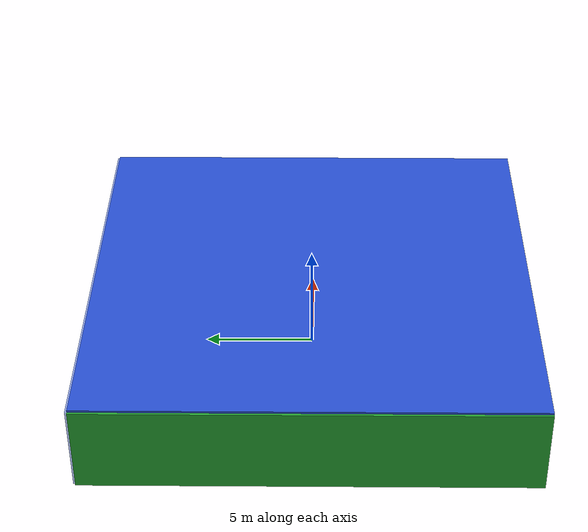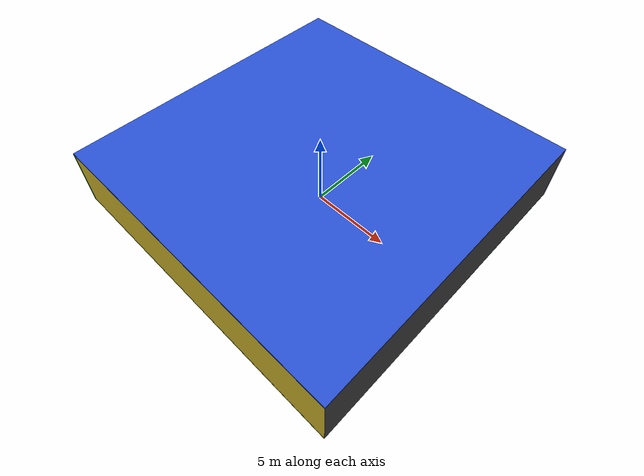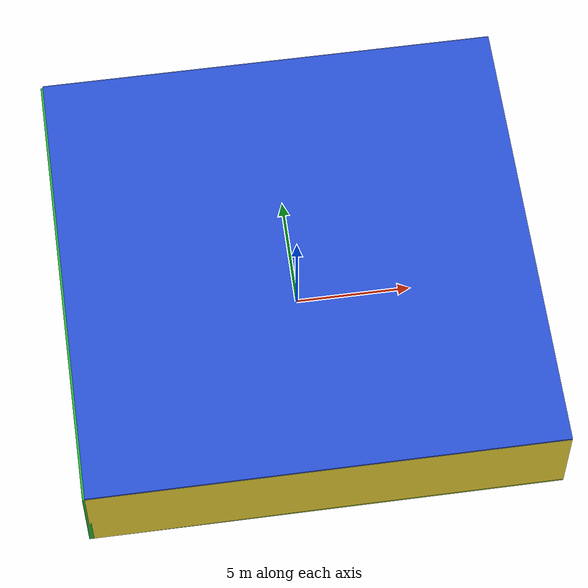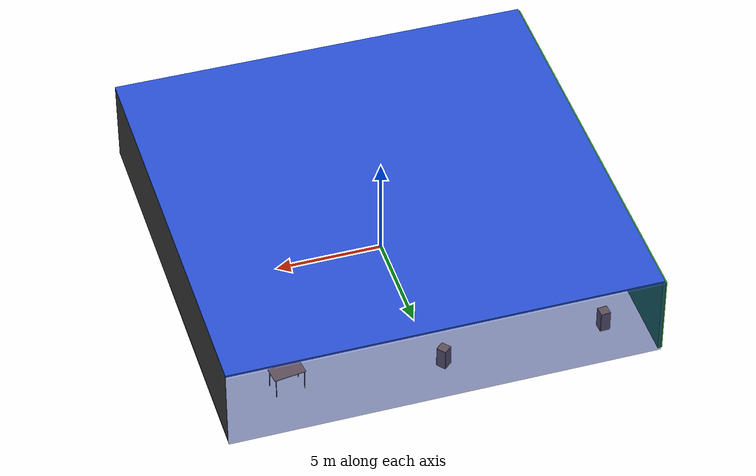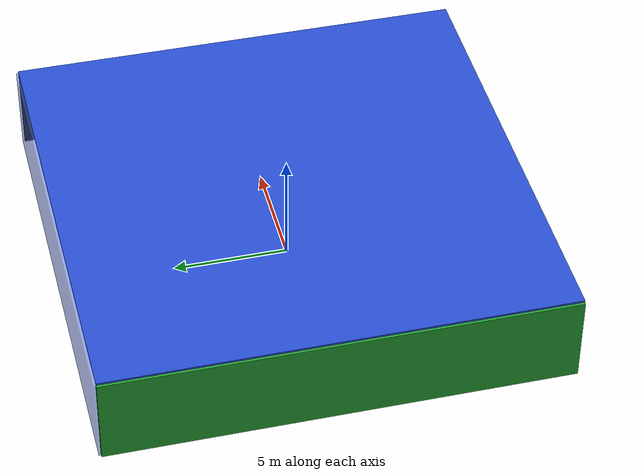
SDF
<sdf version="1.4">
 <world name="default">
  <physics type="ode">
   <max_step_size>0.001</max_step_size>
   <real_time_factor>1</real_time_factor>
   <real_time_update_rate>1000</real_time_update_rate>
   <gravity>0 0 -9.8</gravity>
  </physics>
  <scene><ambient>0.4 0.4 0.4 1</ambient><background>0.7 0.7 0.7 1</background><shadows>1</shadows></scene>
  <model name="Surrounding">
   <static>1</static>
   <link name="Ceiling">
    <collision name="Ceiling_Collision"><geometry><box><size>20 20 0.1</size></box></geometry></collision>
    <visual name="Ceiling_Visual">
     <geometry><box><size>20 20 0.1</size></box></geometry>
     <material>
      <script><uri>file://media/materials/scripts/gazebo.material</uri><name>Gazebo/BlueGlow</name></script>
     </material>
    </visual>
    <pose>0 0 4.05 0 0 0</pose>
   </link>
   <link name="Wall_South">
    <collision name="Wall_South_Collision">
     <geometry><box><size>20 0 4</size></box></geometry>
     <pose>0 0 2 0 -0 0</pose>
    </collision>
    <visual name="Wall_South_Visual">
     <pose>0 0 2 0 -0 0</pose>
     <geometry><box><size>20 0 4</size></box></geometry>
     <material>
      <script><uri>file://media/materials/scripts/gazebo.material</uri><name>Gazebo/ZincYellow</name></script>
     </material>
    </visual>
    <velocity_decay><linear>0</linear><angular>0</angular></velocity_decay>
    <pose>0 -10 0 0 -0 0</pose>
   </link>
   <link name="Wall_East">
    <collision name="Wall_21_Collision">
     <geometry><box><size>20 0 4</size></box></geometry>
     <pose>0 0 2 0 -0 0</pose>
    </collision>
    <visual name="Wall_21_Visual">
     <pose>0 0 2 0 -0 0</pose>
     <geometry><box><size>20 0 4</size></box></geometry>
     <material>
      <script><uri>file://media/materials/scripts/gazebo.material</uri><name>Gazebo/Road</name></script>
     </material>
    </visual>
    <velocity_decay><linear>0</linear><angular>0</angular></velocity_decay>
    <pose>10 0 0 0 -0 1.5708</pose>
   </link>
   <link name="Wall_North">
    <collision name="Wall_22_Collision">
     <geometry><box><size>20 0.2 4</size></box></geometry>
     <pose>0 0 2 0 -0 0</pose>
    </collision>
    <visual name="Wall_22_Visual">
     <pose>0 0 2 0 -0 0</pose>
     <geometry><box><size>20 0.2 4</size></box></geometry>
     <material>
      <script><uri>file://media/materials/scripts/gazebo.material</uri><name>Gazebo/BlueTransparent</name></script>
     </material>
    </visual>
    <velocity_decay><linear>0</linear><angular>0</angular></velocity_decay>
    <pose>0 10 0 0 -0 0</pose>
   </link>
   <link name="Wall_West">
    <collision name="Wall_23_Collision">
     <geometry><box><size>20 0.2 4</size></box></geometry>
     <pose>0 0 2 0 -0 0</pose>
    </collision>
    <visual name="Wall_23_Visual">
     <pose>0 0 2 0 -0 0</pose>
     <geometry><box><size>20 0.2 4</size></box></geometry>
     <material>
      <script><uri>file://media/materials/scripts/gazebo.material</uri><name>Gazebo/GreenGlow</name></script>
     </material>
    </visual>
    <velocity_decay><linear>0</linear><angular>0</angular></velocity_decay>
    <pose>-10 0 0 0 0 -1.5708</pose>
   </link>
   <link name="Ground_link">
    <collision name="collision">
     <pose>0 0 .05 0 -0 0</pose>
     <geometry><box><size>20 20 0.1</size></box></geometry>
    </collision>
    <visual name="visual">
     <pose>0 0 .05 0 -0 0</pose>
     <geometry><box><size>20 20 0.1</size></box></geometry>
     <material>
      <script><uri>file://media/materials/scripts/gazebo.material</uri><name>Gazebo/GreenTransparent</name></script>
     </material>
    </visual>
   </link>
   <static>1</static>
  </model>
  <spherical_coordinates>
   <surface_model>EARTH_WGS84</surface_model>
   <latitude_deg>0</latitude_deg>
   <longitude_deg>0</longitude_deg>
   <elevation>0</elevation>
   <heading_deg>0</heading_deg>
  </spherical_coordinates>
  <light name="lightball_0" type="diffuse">
   <diffuse>0.8 0.8 0.8 1</diffuse>
   <specular>0.2 0.2 0.2 1</specular>
   <attenuation>
    <range>100</range>
    <constant>0.7</constant>
    <linear>0.01</linear>
    <quadratic>0.001</quadratic>
   </attenuation>
   <direction>-0.5 0.1 -0.9</direction>
   <pose>-4.92937042389 2.43399051908 3.85675346486 0 0 0</pose>
  </light>
  <light name="lightball_1" type="diffuse">
   <diffuse>0.8 0.8 0.8 1</diffuse>
   <specular>0.2 0.2 0.2 1</specular>
   <attenuation>
    <range>100</range>
    <constant>0.7</constant>
    <linear>0.01</linear>
    <quadratic>0.001</quadratic>
   </attenuation>
   <direction>-0.5 0.1 -0.9</direction>
   <pose>2.6269169723 -4.89903151979 1.92850724423 0 0 0</pose>
  </light>
  <include><uri>model://cabinet</uri><pose>-7.23400049019 -3.43357629449 0 0 0 0.614853580906</pose></include>
  <include><uri>model://cabinet</uri><pose>-6.3342539002 5.42741043301 0 0 0 1.85043195412</pose></include>
  <include><uri>model://cabinet</uri><pose>-8.03174728801 7.99185645763 0 0 0 0.0500722321806</pose></include>
  <include>
   <uri>model://robocup_3Dsim_goal</uri>
   <pose>-5.69222596512 -7.01635423448 0 0 0 1.11450038477</pose>
  </include>
  <include>
   <uri>model://construction_cone</uri>
   <pose>-5.22350229199 -1.2022759399 0 0 0 2.38493983413</pose>
  </include>
  <include><uri>model://cabinet</uri><pose>-0.42675640776 8.1340930754 0 0 0 0.686278595026</pose></include>
  <include><uri>model://table</uri><pose>0.718903265074 -0.457334240653 0 0 0 2.1284109506</pose></include>
  <include><uri>model://cabinet</uri><pose>7.02713923213 -5.21972995894 0 0 0 0.998801532677</pose></include>
  <include><uri>model://cabinet</uri><pose>7.82469576353 -2.20416143887 0 0 0 0.692405725349</pose></include>
  <include><uri>model://table</uri><pose>6.62014715288 7.46206831947 0 0 0 0.133027588333</pose></include>
 </world>
</sdf>

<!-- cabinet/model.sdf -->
<sdf version="1.5">
  <model name="cabinet">
    <static>true</static>
    <link name="cabinet_bottom_plate">
      <inertial>
        <pose>0 0 -1 0 0 0</pose>
        <inertia>
          <ixx>2.050000</ixx>
          <ixy>0</ixy>
          <ixz>0</ixz>
          <iyy>2.050000</iyy>
          <iyz>0</iyz>
          <izz>2.050000</izz>
        </inertia>
        <mass>25.000000</mass>
      </inertial>
      <collision name="cabinet_bottom_plate_geom">
        <pose>0 0 0.010000 0 0 0</pose>
        <geometry>
          <box>
            <size>0.450000 0.450000 0.020000</size>
          </box>
        </geometry>
      </collision>
      <visual name="cabinet_bottom_plate_geom_visual">
        <pose>0 0 0.010000 0 0 0</pose>
        <geometry>
          <box>
            <size>0.450000 0.450000 0.020000</size>
          </box>
        </geometry>
        <material>
          <script>
            <uri>model://media/materials/scripts/gazebo.material</uri>
            <name>Gazebo/Wood</name>
          </script>
        </material>
      </visual>
      <collision name="cabinet_bottom_plate_geom_cabinet_back_plate">
        <pose>0.235000 0 0.510000 0 0 0</pose>
        <geometry>
          <box>
            <size>0.020000 0.450000 1.020000</size>
          </box>
        </geometry>
      </collision>
      <visual name="cabinet_bottom_plate_geom_cabinet_back_plate_visual">
        <pose>0.235000 0 0.510000 0 0 0</pose>
        <geometry>
          <box>
            <size>0.020000 0.450000 1.020000</size>
          </box>
        </geometry>
        <material>
          <script>
            <uri>model://media/materials/scripts/gazebo.material</uri>
            <name>Gazebo/Wood</name>
          </script>
        </material>
      </visual>
      <collision name="cabinet_bottom_plate_geom_cabinet_left_plate">
        <pose>0 0.235000 0.510000 0 0 0</pose>
        <geometry>
          <box>
            <size>0.450000 0.020000 1.020000</size>
          </box>
        </geometry>
      </collision>
      <visual name="cabinet_bottom_plate_geom_cabinet_left_plate_visual">
        <pose>0 0.235000 0.510000 0 0 0</pose>
        <geometry>
          <box>
            <size>0.450000 0.020000 1.020000</size>
          </box>
        </geometry>
        <material>
          <script>
            <uri>model://media/materials/scripts/gazebo.material</uri>
            <name>Gazebo/Wood</name>
          </script>
        </material>
      </visual>
      <collision name="cabinet_bottom_plate_geom_cabinet_middle_plate">
        <pose>0 0 0.510000 0 0 0</pose>
        <geometry>
          <box>
            <size>0.450000 0.450000 0.020000</size>
          </box>
        </geometry>
      </collision>
      <visual name="cabinet_bottom_plate_geom_cabinet_middle_plate_visual">
        <pose>0 0 0.510000 0 0 0</pose>
        <geometry>
          <box>
            <size>0.450000 0.450000 0.020000</size>
          </box>
        </geometry>
        <material>
          <script>
            <uri>model://media/materials/scripts/gazebo.material</uri>
            <name>Gazebo/Wood</name>
          </script>
        </material>
      </visual>
      <collision name="cabinet_bottom_plate_geom_cabinet_right_plate">
        <pose>0 -0.235000 0.510000 0 0 0</pose>
        <geometry>
          <box>
            <size>0.450000 0.020000 1.020000</size>
          </box>
        </geometry>
      </collision>
      <visual name="cabinet_bottom_plate_geom_cabinet_right_plate_visual">
        <pose>0 -0.235000 0.510000 0 0 0</pose>
        <geometry>
          <box>
            <size>0.450000 0.020000 1.020000</size>
          </box>
        </geometry>
        <material>
          <script>
            <uri>model://media/materials/scripts/gazebo.material</uri>
            <name>Gazebo/Wood</name>
          </script>
        </material>
      </visual>
      <collision name="cabinet_bottom_plate_geom_cabinet_top_plate">
        <pose>0 0 1.010000 0 0 0</pose>
        <geometry>
          <box>
            <size>0.450000 0.450000 0.020000</size>
          </box>
        </geometry>
      </collision>
      <visual name="cabinet_bottom_plate_geom_cabinet_top_plate_visual">
        <pose>0 0 1.010000 0 0 0</pose>
        <geometry>
          <box>
            <size>0.450000 0.450000 0.020000</size>
          </box>
        </geometry>
        <material>
          <script>
            <uri>model://media/materials/scripts/gazebo.material</uri>
            <name>Gazebo/Wood</name>
          </script>
        </material>
      </visual>
    </link>
  </model>
</sdf>

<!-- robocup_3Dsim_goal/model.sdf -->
<sdf version="1.5">
  <model name="robocup_3d_goal">
    <static>true</static>
    <link name="left_post">
      <pose>0 1.05 0.45 0 0 0</pose>
      <collision name="collision">
        <geometry>
          <cylinder>
            <radius>0.05</radius>
            <length>0.9</length>
          </cylinder>
        </geometry>
      </collision>
      <visual name="visual">
        <geometry>
          <cylinder>
            <radius>0.05</radius>
            <length>0.9</length>
          </cylinder>
        </geometry>
        <material>
          <script>
            <uri>file://media/materials/scripts/gazebo.material</uri>
            <name>Gazebo/ZincYellow</name>
          </script>
        </material>
      </visual>
    </link>
    <link name="left_support_horiz_lower">
      <pose>0.30 1.05 0.01 0 0 0</pose>
      <collision name="collision">
        <geometry>
          <box>
            <size>0.50 0.02 0.02</size>
          </box>
        </geometry>
      </collision>
      <visual name="visual">
        <geometry>
          <box>
            <size>0.50 0.02 0.02</size>
          </box>
        </geometry>
        <material>
          <script>
            <uri>file://media/materials/scripts/gazebo.material</uri>
            <name>Gazebo/White</name>
          </script>
        </material>
      </visual>
    </link>
    <link name="left_support_horiz_upper">
      <pose>0.30 1.05 0.79 0 0 0</pose>
      <collision name="collision">
        <geometry>
          <box>
            <size>0.50 0.02 0.02</size>
          </box>
        </geometry>
      </collision>
      <visual name="visual">
        <geometry>
          <box>
            <size>0.50 0.02 0.02</size>
          </box>
        </geometry>
        <material>
          <script>
            <uri>file://media/materials/scripts/gazebo.material</uri>
            <name>Gazebo/White</name>
          </script>
        </material>
      </visual>
    </link>
    <link name="left_support_vertical">
      <pose>0.56 1.05 0.4 0 1.5708 0</pose>
      <collision name="collision">
        <geometry>
          <box>
            <size>0.80 0.02 0.02</size>
          </box>
        </geometry>
      </collision>
      <visual name="visual">
        <geometry>
          <box>
            <size>0.80 0.02 0.02</size>
          </box>
        </geometry>
        <material>
          <script>
            <uri>file://media/materials/scripts/gazebo.material</uri>
            <name>Gazebo/White</name>
          </script>
        </material>
      </visual>
    </link>
    <link name="right_support_horiz_lower">
      <pose>0.30 -1.05 0.01 0 0 0</pose>
      <collision name="collision">
        <geometry>
          <box>
            <size>0.50 0.02 0.02</size>
          </box>
        </geometry>
      </collision>
      <visual name="visual">
        <geometry>
          <box>
            <size>0.50 0.02 0.02</size>
          </box>
        </geometry>
        <material>
          <script>
            <uri>file://media/materials/scripts/gazebo.material</uri>
            <name>Gazebo/White</name>
          </script>
        </material>
      </visual>
    </link>
    <link name="right_support_horiz_upper">
      <pose>0.30 -1.05 0.79 0 0 0</pose>
      <collision name="collision">
        <geometry>
          <box>
            <size>0.50 0.02 0.02</size>
          </box>
        </geometry>
      </collision>
      <visual name="visual">
        <geometry>
          <box>
            <size>0.50 0.02 0.02</size>
          </box>
        </geometry>
        <material>
          <script>
            <uri>file://media/materials/scripts/gazebo.material</uri>
            <name>Gazebo/White</name>
          </script>
        </material>
      </visual>
    </link>
    <link name="right_support_vertical">
      <pose>0.56 -1.05 0.4 0 1.5708 0</pose>
      <collision name="collision">
        <geometry>
          <box>
            <size>0.80 0.02 0.02</size>
          </box>
        </geometry>
      </collision>
      <visual name="visual">
        <geometry>
          <box>
            <size>0.80 0.02 0.02</size>
          </box>
        </geometry>
        <material>
          <script>
            <uri>file://media/materials/scripts/gazebo.material</uri>
            <name>Gazebo/White</name>
          </script>
        </material>
      </visual>
    </link>
    <link name="center_support_horiz_lower">
      <pose>0.56 0 0.01 0 1.5708 0</pose>
      <collision name="collision">
        <geometry>
          <box>
            <size>0.02 2.08 0.02</size>
          </box>
        </geometry>
      </collision>
      <visual name="visual">
        <geometry>
          <box>
            <size>0.02 2.08 0.02</size>
          </box>
        </geometry>
        <material>
          <script>
            <uri>file://media/materials/scripts/gazebo.material</uri>
            <name>Gazebo/White</name>
          </script>
        </material>
      </visual>
    </link>
    <link name="center_support_horiz_upper">
      <pose>0.56 0 0.79 0 1.5708 0</pose>
      <collision name="collision">
        <geometry>
          <box>
            <size>0.02 2.08 0.02</size>
          </box>
        </geometry>
      </collision>
      <visual name="visual">
        <geometry>
          <box>
            <size>0.02 2.08 0.02</size>
          </box>
        </geometry>
        <material>
          <script>
            <uri>file://media/materials/scripts/gazebo.material</uri>
            <name>Gazebo/White</name>
          </script>
        </material>
      </visual>
    </link>
    <link name="right_post">
      <pose>0 -1.05 0.45 0 0 0</pose>
      <collision name="collision">
        <geometry>
          <cylinder>
            <radius>0.05</radius>
            <length>0.9</length>
          </cylinder>
        </geometry>
      </collision>
      <visual name="visual">
        <geometry>
          <cylinder>
            <radius>0.05</radius>
            <length>0.9</length>
          </cylinder>
        </geometry>
        <material>
          <script>
            <uri>file://media/materials/scripts/gazebo.material</uri>
            <name>Gazebo/ZincYellow</name>
          </script>
        </material>
      </visual>
    </link>
    <link name="crossbar">
      <pose>0 0 0.85 1.57 1.57 0</pose>
      <collision name="collision">
        <geometry>
          <cylinder>
            <radius>0.05</radius>
            <length>2.0</length>
          </cylinder>
        </geometry>
      </collision>
      <visual name="visual">
        <geometry>
          <cylinder>
            <radius>0.05</radius>
            <length>2.0</length>
          </cylinder>
        </geometry>
        <material>
          <script>
            <uri>file://media/materials/scripts/gazebo.material</uri>
            <name>Gazebo/ZincYellow</name>
          </script>
        </material>
      </visual>
    </link>
    <link name="center_net">
      <pose>0.56 0 0.40 0 0 0</pose>
      <collision name="collision">
        <geometry>
          <box>
            <size>0.01 2.1 0.80</size>
          </box>
        </geometry>
      </collision>
      <visual name="visual">
        <geometry>
          <box>
            <size>0.01 2.1 0.80</size>
          </box>
        </geometry>
        <material>
          <script>
            <uri>model://../model_source/models/robocup09_spl_field/materials/scripts/</uri>
            <uri>model://../model_source/models/robocup09_spl_field/materials/textures/</uri>
            <name>RoboCup/Net</name>
          </script>
        </material>
      </visual>
    </link>
    <link name="left_net">
      <pose>0.30 1.05 0.40 0 0 0</pose>
      <collision name="collision">
        <geometry>
          <box>
            <size>0.50 0.01 0.76</size>
          </box>
        </geometry>
      </collision>
      <visual name="visual">
        <geometry>
          <box>
            <size>0.50 0.01 0.76</size>
          </box>
        </geometry>
        <material>
          <script>
            <uri>model://../model_source/models/robocup09_spl_field/materials/scripts/</uri>
            <uri>model://../model_source/models/robocup09_spl_field/materials/textures/</uri>
            <name>RoboCup/Net</name>
          </script>
        </material>
      </visual>
    </link>
    <link name="right_net">
      <pose>0.30 -1.05 0.40 0 0 0</pose>
      <collision name="collision">
        <geometry>
          <box>
            <size>0.50 0.01 0.76</size>
          </box>
        </geometry>
      </collision>
      <visual name="visual">
        <geometry>
          <box>
            <size>0.50 0.01 0.76</size>
          </box>
        </geometry>
        <material>
          <script>
            <uri>model://../model_source/models/robocup09_spl_field/materials/scripts/</uri>
            <uri>model://../model_source/models/robocup09_spl_field/materials/textures/</uri>
            <name>RoboCup/Net</name>
          </script>
        </material>
      </visual>
    </link>
  </model>
</sdf>

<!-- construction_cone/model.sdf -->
<sdf version="1.5">
  <model name="Construction Cone">
    <link name="link">
      <collision name="collision">
        <geometry>
          <mesh>
            <scale>10 10 10</scale>
            <uri>file://isr-testbed/construction_cone/meshes/construction_cone.dae</uri>
          </mesh>
        </geometry>
      </collision>
      <visual name="visual">
        <geometry>
          <mesh>
            <scale>10 10 10</scale>
            <uri>file://isr-testbed/construction_cone/meshes/construction_cone.dae</uri>
          </mesh>
        </geometry>
      </visual>
    </link>
  </model>
</sdf>

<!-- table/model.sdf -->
<sdf version="1.5">
  <model name="table">
    <static>true</static>
    <link name="link">
      <collision name="surface">
        <pose>0 0 1.0 0 0 0</pose>
        <geometry>
          <box>
            <size>1.5 0.8 0.03</size>
          </box>
        </geometry>
        <surface>
          <friction>
            <ode>
              <mu>0.6</mu>
              <mu2>0.6</mu2>
            </ode>
          </friction>
        </surface>
      </collision>
      <visual name="visual1">
        <pose>0 0 1.0 0 0 0</pose>
        <geometry>
          <box>
            <size>1.5 0.8 0.03</size>
          </box>
        </geometry>
        <material>
          <script>
            <uri>model://media/materials/scripts/gazebo.material</uri>
            <name>Gazebo/Wood</name>
          </script>
        </material>
      </visual>
      <collision name="front_left_leg">
        <pose>0.68 0.38 0.5 0 0 0</pose>
        <geometry>
          <cylinder>
            <radius>0.02</radius>
            <length>1.0</length>
          </cylinder>
        </geometry>
      </collision>
      <visual name="front_left_leg">
        <pose>0.68 0.38 0.5 0 0 0</pose>
        <geometry>
          <cylinder>
            <radius>0.02</radius>
            <length>1.0</length>
          </cylinder>
        </geometry>
        <material>
          <script>
            <uri>model://media/materials/scripts/gazebo.material</uri>
            <name>Gazebo/Grey</name>
          </script>
        </material>
      </visual>
      <collision name="front_right_leg">
        <pose>0.68 -0.38 0.5 0 0 0</pose>
        <geometry>
          <cylinder>
            <radius>0.02</radius>
            <length>1.0</length>
          </cylinder>
        </geometry>
      </collision>
      <visual name="front_right_leg">
        <pose>0.68 -0.38 0.5 0 0 0</pose>
        <geometry>
          <cylinder>
            <radius>0.02</radius>
            <length>1.0</length>
          </cylinder>
        </geometry>
        <material>
          <script>
            <uri>model://media/materials/scripts/gazebo.material</uri>
            <name>Gazebo/Grey</name>
          </script>
        </material>
      </visual>
      <collision name="back_right_leg">
        <pose>-0.68 -0.38 0.5 0 0 0</pose>
        <geometry>
          <cylinder>
            <radius>0.02</radius>
            <length>1.0</length>
          </cylinder>
        </geometry>
      </collision>
      <visual name="back_right_leg">
        <pose>-0.68 -0.38 0.5 0 0 0</pose>
        <geometry>
          <cylinder>
            <radius>0.02</radius>
            <length>1.0</length>
          </cylinder>
        </geometry>
        <material>
          <script>
            <uri>model://media/materials/scripts/gazebo.material</uri>
            <name>Gazebo/Grey</name>
          </script>
        </material>
      </visual>
      <collision name="back_left_leg">
        <pose>-0.68 0.38 0.5 0 0 0</pose>
        <geometry>
          <cylinder>
            <radius>0.02</radius>
            <length>1.0</length>
          </cylinder>
        </geometry>
      </collision>
      <visual name="back_left_leg">
        <pose>-0.68 0.38 0.5 0 0 0</pose>
        <geometry>
          <cylinder>
            <radius>0.02</radius>
            <length>1.0</length>
          </cylinder>
        </geometry>
        <material>
          <script>
            <uri>model://media/materials/scripts/gazebo.material</uri>
            <name>Gazebo/Grey</name>
          </script>
        </material>
      </visual>
    </link>
  </model>
</sdf>
